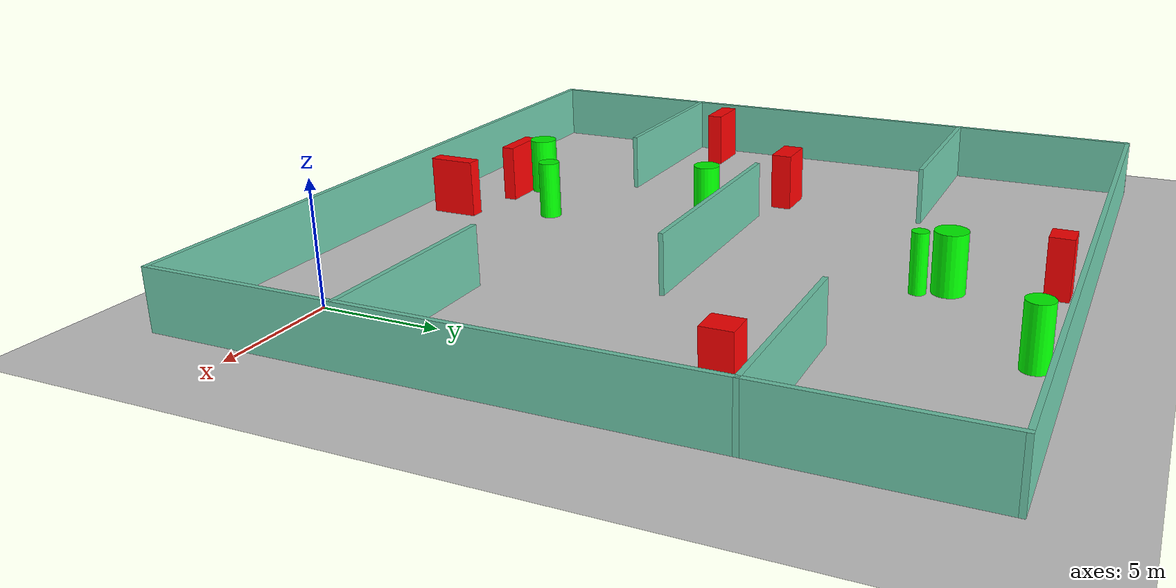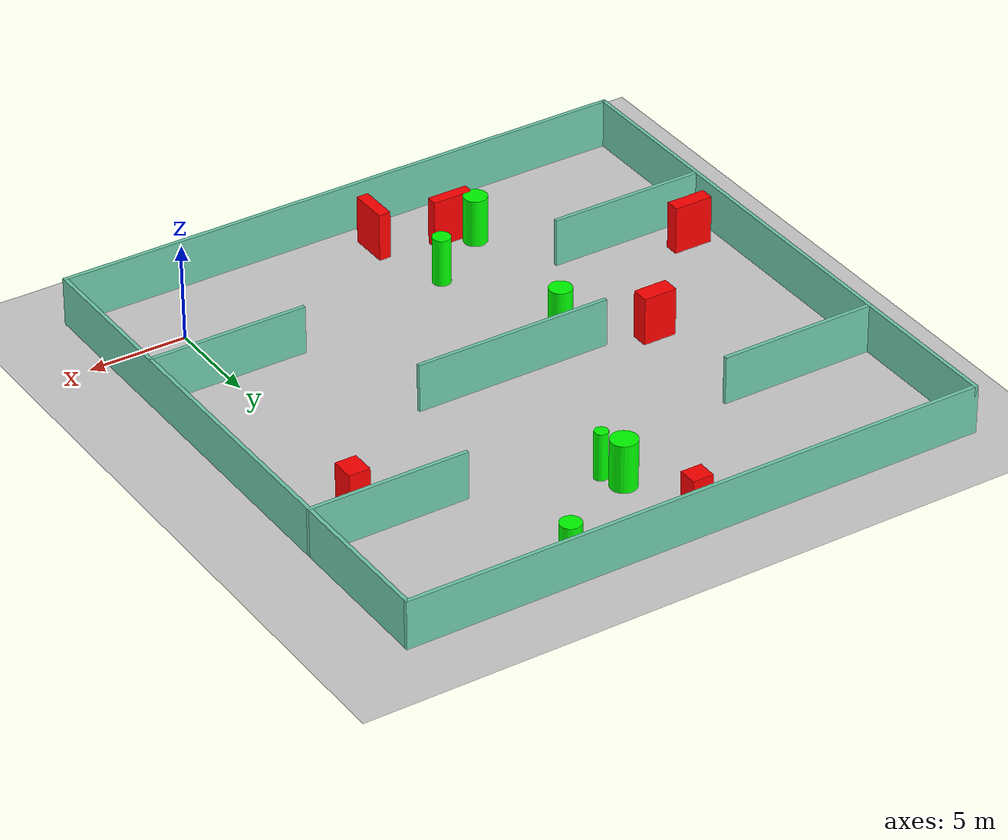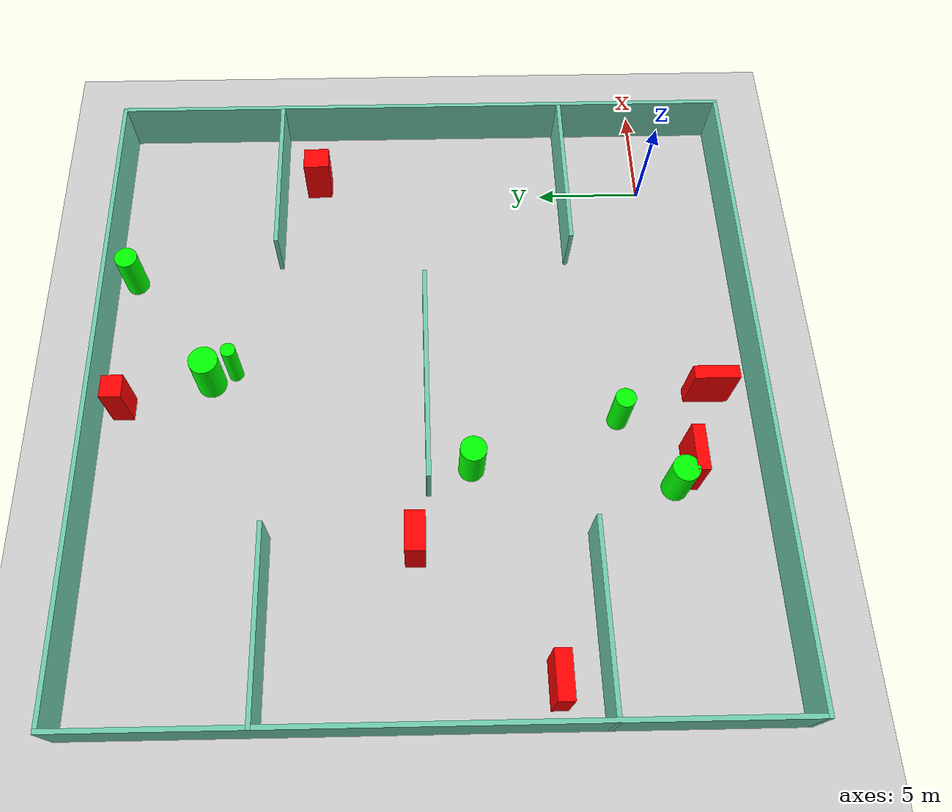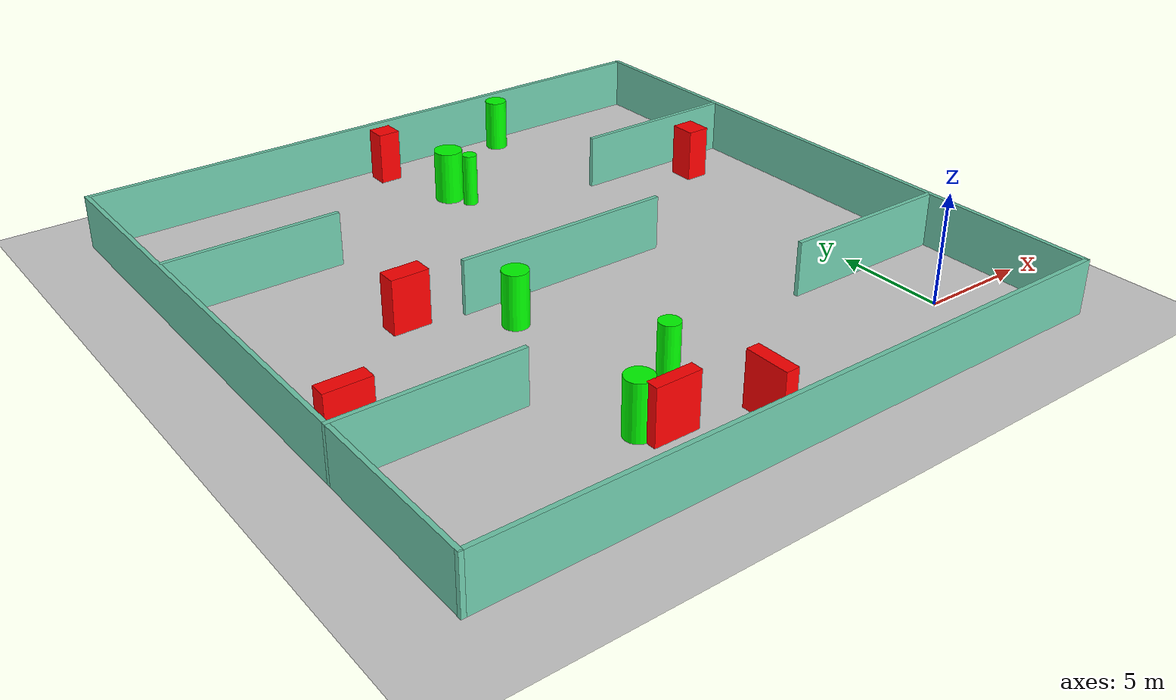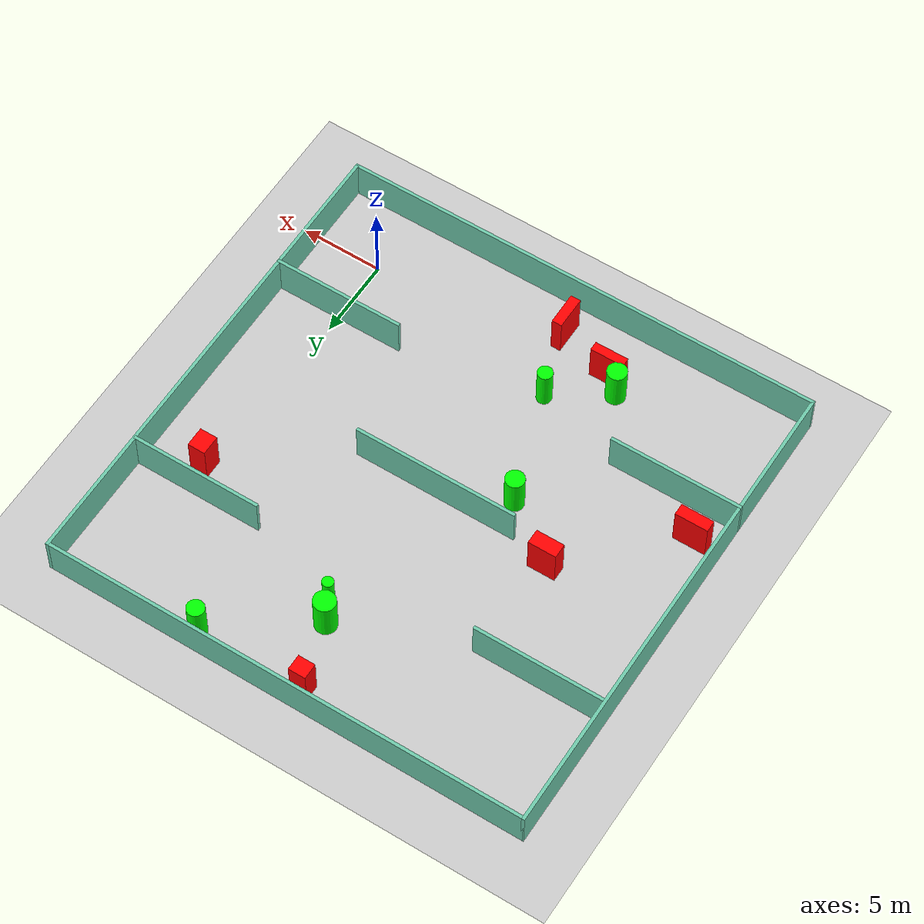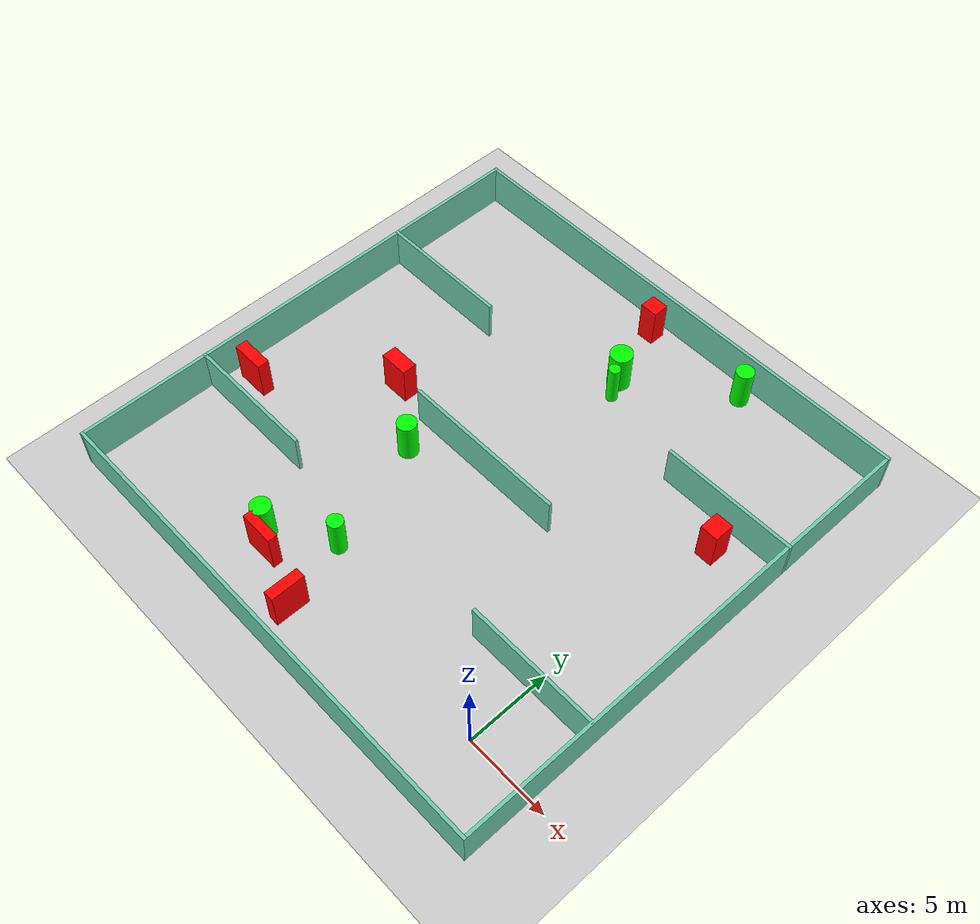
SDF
<sdf version="1.7">
 <world name="default">
  <light name="sun" type="directional">
   <pose>0 0 10 0 -0 0</pose>
   <diffuse>0.8 0.8 0.8 1</diffuse>
   <specular>0.2 0.2 0.2 1</specular>
   <attenuation>
    <range>1000</range>
    <constant>0.9</constant>
    <linear>0.01</linear>
    <quadratic>0.001</quadratic>
   </attenuation>
   <direction>-0.5 0.1 -0.9</direction>
   <spot><inner_angle>0</inner_angle><outer_angle>0</outer_angle><falloff>0</falloff></spot>
  </light>
  <model name="ground_plane">
   <static>1</static>
   <link name="link">
    <collision name="collision">
     <geometry><plane><normal>0 0 1</normal><size>100 100</size></plane></geometry>
     <surface>
      <contact><collide_bitmask>65535</collide_bitmask></contact>
      <friction><ode><mu>100</mu><mu2>50</mu2></ode></friction>
     </surface>
    </collision>
    <visual name="visual">
     <cast_shadows>0</cast_shadows>
     <geometry><plane><normal>0 0 1</normal><size>100 100</size></plane></geometry>
     <material>
      <script><uri>file://media/materials/scripts/gazebo.material</uri><name>Gazebo/Grey</name></script>
     </material>
    </visual>
   </link>
  </model>
  <gravity>0 0 -9.8</gravity>
  <magnetic_field>6e-06 2.3e-05 -4.2e-05</magnetic_field>
  <atmosphere type="adiabatic"/>
  <physics type="ode">
   <max_step_size>0.001</max_step_size>
   <real_time_factor>1</real_time_factor>
   <real_time_update_rate>1000</real_time_update_rate>
  </physics>
  <scene><ambient>0.4 0.4 0.4 1</ambient><background>0.7 0.7 0.7 1</background><shadows>1</shadows></scene>
  <spherical_coordinates>
   <surface_model>EARTH_WGS84</surface_model>
   <latitude_deg>0</latitude_deg>
   <longitude_deg>0</longitude_deg>
   <elevation>0</elevation>
   <heading_deg>0</heading_deg>
  </spherical_coordinates>
  <model name="my_base_walls">
   <link name="Wall_10">
    <collision name="Wall_10_Collision">
     <geometry><box><size>8.2 0.2 2.5</size></box></geometry>
     <pose>0 0 1.25 0 -0 0</pose>
    </collision>
    <visual name="Wall_10_Visual">
     <pose>0 0 1.25 0 -0 0</pose>
     <geometry><box><size>8.2 0.2 2.5</size></box></geometry>
     <material>
      <script><uri>file://media/materials/scripts/gazebo.material</uri><name>Gazebo/Grey</name></script>
      <ambient>0.435294 0.796078 0.67451 1</ambient>
     </material>
     <meta><layer>0</layer></meta>
    </visual>
    <pose>-11 -7 0 0 -0 0</pose>
   </link>
   <link name="Wall_12">
    <collision name="Wall_12_Collision">
     <geometry><box><size>8.2 0.2 2.5</size></box></geometry>
     <pose>0 0 1.25 0 -0 0</pose>
    </collision>
    <visual name="Wall_12_Visual">
     <pose>0 0 1.25 0 -0 0</pose>
     <geometry><box><size>8.2 0.2 2.5</size></box></geometry>
     <material>
      <script><uri>file://media/materials/scripts/gazebo.material</uri><name>Gazebo/Grey</name></script>
      <ambient>0.435294 0.796078 0.67451 1</ambient>
     </material>
     <meta><layer>0</layer></meta>
    </visual>
    <pose>-11 7 0 0 -0 0</pose>
   </link>
   <link name="Wall_14">
    <collision name="Wall_14_Collision">
     <geometry><box><size>8.2 0.2 2.5</size></box></geometry>
     <pose>0 0 1.25 0 -0 0</pose>
    </collision>
    <visual name="Wall_14_Visual">
     <pose>0 0 1.25 0 -0 0</pose>
     <geometry><box><size>8.2 0.2 2.5</size></box></geometry>
     <material>
      <script><uri>file://media/materials/scripts/gazebo.material</uri><name>Gazebo/Grey</name></script>
      <ambient>0.435294 0.796078 0.67451 1</ambient>
     </material>
     <meta><layer>0</layer></meta>
    </visual>
    <pose>11 7 0 0 -0 3.14159</pose>
   </link>
   <link name="Wall_16">
    <collision name="Wall_16_Collision">
     <geometry><box><size>10.2 0.2 2.5</size></box></geometry>
     <pose>0 0 1.25 0 -0 0</pose>
    </collision>
    <visual name="Wall_16_Visual">
     <pose>0 0 1.25 0 -0 0</pose>
     <geometry><box><size>10.2 0.2 2.5</size></box></geometry>
     <material>
      <script><uri>file://media/materials/scripts/gazebo.material</uri><name>Gazebo/Grey</name></script>
      <ambient>0.435294 0.796078 0.67451 1</ambient>
     </material>
     <meta><layer>0</layer></meta>
    </visual>
    <pose>0 0 0 0 -0 3.14159</pose>
   </link>
   <link name="Wall_2">
    <collision name="Wall_2_Collision">
     <geometry><box><size>30.2 0.2 2.5</size></box></geometry>
     <pose>0 0 1.25 0 -0 0</pose>
    </collision>
    <visual name="Wall_2_Visual">
     <pose>0 0 1.25 0 -0 0</pose>
     <geometry><box><size>30.2 0.2 2.5</size></box></geometry>
     <material>
      <script><uri>file://media/materials/scripts/gazebo.material</uri><name>Gazebo/Grey</name></script>
      <ambient>0.435294 0.796078 0.67451 1</ambient>
     </material>
     <meta><layer>0</layer></meta>
    </visual>
    <pose>0 -15 0 0 -0 3.14159</pose>
   </link>
   <link name="Wall_3">
    <collision name="Wall_3_Collision">
     <geometry><box><size>30.2 0.2 2.5</size></box></geometry>
     <pose>0 0 1.25 0 -0 0</pose>
    </collision>
    <visual name="Wall_3_Visual">
     <pose>0 0 1.25 0 -0 0</pose>
     <geometry><box><size>30.2 0.2 2.5</size></box></geometry>
     <material>
      <script><uri>file://media/materials/scripts/gazebo.material</uri><name>Gazebo/Grey</name></script>
      <ambient>0.435294 0.796078 0.67451 1</ambient>
     </material>
     <meta><layer>0</layer></meta>
    </visual>
    <pose>-15 0 0 0 -0 1.5708</pose>
   </link>
   <link name="Wall_4">
    <collision name="Wall_4_Collision">
     <geometry><box><size>30.2 0.2 2.5</size></box></geometry>
     <pose>0 0 1.25 0 -0 0</pose>
    </collision>
    <visual name="Wall_4_Visual">
     <pose>0 0 1.25 0 -0 0</pose>
     <geometry><box><size>30.2 0.2 2.5</size></box></geometry>
     <material>
      <script><uri>file://media/materials/scripts/gazebo.material</uri><name>Gazebo/Grey</name></script>
      <ambient>0.435294 0.796078 0.67451 1</ambient>
     </material>
     <meta><layer>0</layer></meta>
    </visual>
    <pose>0 15 0 0 -0 0</pose>
   </link>
   <link name="Wall_6">
    <collision name="Wall_6_Collision">
     <geometry><box><size>30.2 0.2 2.5</size></box></geometry>
     <pose>0 0 1.25 0 -0 0</pose>
    </collision>
    <visual name="Wall_6_Visual">
     <pose>0 0 1.25 0 -0 0</pose>
     <geometry><box><size>30.2 0.2 2.5</size></box></geometry>
     <material>
      <script><uri>file://media/materials/scripts/gazebo.material</uri><name>Gazebo/Grey</name></script>
      <ambient>0.435294 0.796078 0.67451 1</ambient>
     </material>
     <meta><layer>0</layer></meta>
    </visual>
    <pose>15 0 0 0 -0 1.5708</pose>
   </link>
   <link name="Wall_8">
    <collision name="Wall_8_Collision">
     <geometry><box><size>8.2 0.2 2.5</size></box></geometry>
     <pose>0 0 1.25 0 -0 0</pose>
    </collision>
    <visual name="Wall_8_Visual">
     <pose>0 0 1.25 0 -0 0</pose>
     <geometry><box><size>8.2 0.2 2.5</size></box></geometry>
     <material>
      <script><uri>file://media/materials/scripts/gazebo.material</uri><name>Gazebo/Grey</name></script>
      <ambient>0.435294 0.796078 0.67451 1</ambient>
     </material>
     <meta><layer>0</layer></meta>
    </visual>
    <pose>11 -7 0 0 -0 3.14159</pose>
   </link>
   <static>1</static>
   <pose>-11 11 0 0 -0 0</pose>
  </model>
  <model name="cylinder1">
   <static>1</static>
   <link name="link">
    <inertial>
     <mass>1</mass>
     <inertia><ixx>0.5</ixx><ixy>0</ixy><ixz>0</ixz><iyy>0.5</iyy><iyz>0</iyz><izz>1</izz></inertia>
    </inertial>
    <collision name="collision">
     <geometry><cylinder><radius>0.4610614182803982</radius><length>2.5</length></cylinder></geometry>
    </collision>
    <visual name="visual">
     <geometry><cylinder><radius>0.4610614182803982</radius><length>2.5</length></cylinder></geometry>
     <material>
      <ambient>0 1 0 1</ambient>
      <diffuse>0 1 0 1</diffuse>
      <specular>0.1 0.1 0.1 1</specular>
      <emissive>0 0 0 0</emissive>
     </material>
    </visual>
   </link>
   <pose>-12.616909777302315 2.3140727472280567 1.25 0 0 0</pose>
  </model>
  <model name="cylinder2">
   <static>1</static>
   <link name="link">
    <inertial>
     <mass>1</mass>
     <inertia><ixx>0.5</ixx><ixy>0</ixy><ixz>0</ixz><iyy>0.5</iyy><iyz>0</iyz><izz>1</izz></inertia>
    </inertial>
    <collision name="collision">
     <geometry><cylinder><radius>0.5997317993139183</radius><length>2.5</length></cylinder></geometry>
    </collision>
    <visual name="visual">
     <geometry><cylinder><radius>0.5997317993139183</radius><length>2.5</length></cylinder></geometry>
     <material>
      <ambient>0 1 0 1</ambient>
      <diffuse>0 1 0 1</diffuse>
      <specular>0.1 0.1 0.1 1</specular>
      <emissive>0 0 0 0</emissive>
     </material>
    </visual>
   </link>
   <pose>-15.921687807563796 0.08937693952233161 1.25 0 0 0</pose>
  </model>
  <model name="cylinder3">
   <static>1</static>
   <link name="link">
    <inertial>
     <mass>1</mass>
     <inertia><ixx>0.5</ixx><ixy>0</ixy><ixz>0</ixz><iyy>0.5</iyy><iyz>0</iyz><izz>1</izz></inertia>
    </inertial>
    <collision name="collision">
     <geometry><cylinder><radius>0.6674610910965402</radius><length>2.5</length></cylinder></geometry>
    </collision>
    <visual name="visual">
     <geometry><cylinder><radius>0.6674610910965402</radius><length>2.5</length></cylinder></geometry>
     <material>
      <ambient>0 1 0 1</ambient>
      <diffuse>0 1 0 1</diffuse>
      <specular>0.1 0.1 0.1 1</specular>
      <emissive>0 0 0 0</emissive>
     </material>
    </visual>
   </link>
   <pose>-10.421221201131333 20.94385720894193 1.25 0 0 0</pose>
  </model>
  <model name="cylinder4">
   <static>1</static>
   <link name="link">
    <inertial>
     <mass>1</mass>
     <inertia><ixx>0.5</ixx><ixy>0</ixy><ixz>0</ixz><iyy>0.5</iyy><iyz>0</iyz><izz>1</izz></inertia>
    </inertial>
    <collision name="collision">
     <geometry><cylinder><radius>0.5819619269339813</radius><length>2.5</length></cylinder></geometry>
    </collision>
    <visual name="visual">
     <geometry><cylinder><radius>0.5819619269339813</radius><length>2.5</length></cylinder></geometry>
     <material>
      <ambient>0 1 0 1</ambient>
      <diffuse>0 1 0 1</diffuse>
      <specular>0.1 0.1 0.1 1</specular>
      <emissive>0 0 0 0</emissive>
     </material>
    </visual>
   </link>
   <pose>-14.873009586673485 9.062012604872992 1.25 0 0 0</pose>
  </model>
  <model name="cylinder5">
   <static>1</static>
   <link name="link">
    <inertial>
     <mass>1</mass>
     <inertia><ixx>0.5</ixx><ixy>0</ixy><ixz>0</ixz><iyy>0.5</iyy><iyz>0</iyz><izz>1</izz></inertia>
    </inertial>
    <collision name="collision">
     <geometry><cylinder><radius>0.529228655180182</radius><length>2.5</length></cylinder></geometry>
    </collision>
    <visual name="visual">
     <geometry><cylinder><radius>0.529228655180182</radius><length>2.5</length></cylinder></geometry>
     <material>
      <ambient>0 1 0 1</ambient>
      <diffuse>0 1 0 1</diffuse>
      <specular>0.1 0.1 0.1 1</specular>
      <emissive>0 0 0 0</emissive>
     </material>
    </visual>
   </link>
   <pose>-4.9242108246689895 24.989828769142754 1.25 0 0 0</pose>
  </model>
  <model name="cylinder6">
   <static>1</static>
   <link name="link">
    <inertial>
     <mass>1</mass>
     <inertia><ixx>0.5</ixx><ixy>0</ixy><ixz>0</ixz><iyy>0.5</iyy><iyz>0</iyz><izz>1</izz></inertia>
    </inertial>
    <collision name="collision">
     <geometry><cylinder><radius>0.3416626301114767</radius><length>2.5</length></cylinder></geometry>
    </collision>
    <visual name="visual">
     <geometry><cylinder><radius>0.3416626301114767</radius><length>2.5</length></cylinder></geometry>
     <material>
      <ambient>0 1 0 1</ambient>
      <diffuse>0 1 0 1</diffuse>
      <specular>0.1 0.1 0.1 1</specular>
      <emissive>0 0 0 0</emissive>
     </material>
    </visual>
   </link>
   <pose>-9.91770784112914 19.87346671626673 1.25 0 0 0</pose>
  </model>
  <model name="box1">
   <static>1</static>
   <link name="link">
    <inertial>
     <mass>1</mass>
     <inertia><ixx>0.083</ixx><ixy>0</ixy><ixz>0</ixz><iyy>0.083</iyy><iyz>0</iyz><izz>0.083</izz></inertia>
    </inertial>
    <collision name="collision">
     <geometry><box><size>1.0610388681146992 0.9699750562504644 2.5</size></box></geometry>
    </collision>
    <visual name="visual">
     <geometry><box><size>1.0610388681146992 0.9699750562504644 2.5</size></box></geometry>
     <material>
      <ambient>1 0 0 1</ambient>
      <diffuse>1 0 0 1</diffuse>
      <specular>0.1 0.1 0.1 1</specular>
      <emissive>0 0 0 0</emissive>
     </material>
    </visual>
    <sensor name="my_contact" type="contact">
     <contact><collision>box_collision</collision><topic>__default_topic__</topic></contact>
    </sensor>
   </link>
   <pose>-11.618602011438929 24.876897096820617 1.25 0 0 0</pose>
  </model>
  <model name="box2">
   <static>1</static>
   <link name="link">
    <inertial>
     <mass>1</mass>
     <inertia><ixx>0.083</ixx><ixy>0</ixy><ixz>0</ixz><iyy>0.083</iyy><iyz>0</iyz><izz>0.083</izz></inertia>
    </inertial>
    <collision name="collision">
     <geometry><box><size>0.6218622737764278 2.035135765882938 2.5</size></box></geometry>
    </collision>
    <visual name="visual">
     <geometry><box><size>0.6218622737764278 2.035135765882938 2.5</size></box></geometry>
     <material>
      <ambient>1 0 0 1</ambient>
      <diffuse>1 0 0 1</diffuse>
      <specular>0.1 0.1 0.1 1</specular>
      <emissive>0 0 0 0</emissive>
     </material>
    </visual>
    <sensor name="my_contact" type="contact">
     <contact><collision>box_collision</collision><topic>__default_topic__</topic></contact>
    </sensor>
   </link>
   <pose>-11.421949334062461 -1.8549528986230968 1.25 0 0 0</pose>
  </model>
  <model name="box3">
   <static>1</static>
   <link name="link">
    <inertial>
     <mass>1</mass>
     <inertia><ixx>0.083</ixx><ixy>0</ixy><ixz>0</ixz><iyy>0.083</iyy><iyz>0</iyz><izz>0.083</izz></inertia>
    </inertial>
    <collision name="collision">
     <geometry><box><size>2.025240066283583 0.7153628716188376 2.5</size></box></geometry>
    </collision>
    <visual name="visual">
     <geometry><box><size>2.025240066283583 0.7153628716188376 2.5</size></box></geometry>
     <material>
      <ambient>1 0 0 1</ambient>
      <diffuse>1 0 0 1</diffuse>
      <specular>0.1 0.1 0.1 1</specular>
      <emissive>0 0 0 0</emissive>
     </material>
    </visual>
    <sensor name="my_contact" type="contact">
     <contact><collision>box_collision</collision><topic>__default_topic__</topic></contact>
    </sensor>
   </link>
   <pose>-24.287007378004386 5.923507607149126 1.25 0 0 0</pose>
  </model>
  <model name="box4">
   <static>1</static>
   <link name="link">
    <inertial>
     <mass>1</mass>
     <inertia><ixx>0.083</ixx><ixy>0</ixy><ixz>0</ixz><iyy>0.083</iyy><iyz>0</iyz><izz>0.083</izz></inertia>
    </inertial>
    <collision name="collision">
     <geometry><box><size>1.7374344572370384 0.8961778012306292 2.5</size></box></geometry>
    </collision>
    <visual name="visual">
     <geometry><box><size>1.7374344572370384 0.8961778012306292 2.5</size></box></geometry>
     <material>
      <ambient>1 0 0 1</ambient>
      <diffuse>1 0 0 1</diffuse>
      <specular>0.1 0.1 0.1 1</specular>
      <emissive>0 0 0 0</emissive>
     </material>
    </visual>
    <sensor name="my_contact" type="contact">
     <contact><collision>box_collision</collision><topic>__default_topic__</topic></contact>
    </sensor>
   </link>
   <pose>-18.431007818254532 11.61235456334926 1.25 0 0 0</pose>
  </model>
  <model name="box5">
   <static>1</static>
   <link name="link">
    <inertial>
     <mass>1</mass>
     <inertia><ixx>0.083</ixx><ixy>0</ixy><ixz>0</ixz><iyy>0.083</iyy><iyz>0</iyz><izz>0.083</izz></inertia>
    </inertial>
    <collision name="collision">
     <geometry><box><size>2.092489332215023 0.5622084551844755 2.5</size></box></geometry>
    </collision>
    <visual name="visual">
     <geometry><box><size>2.092489332215023 0.5622084551844755 2.5</size></box></geometry>
     <material>
      <ambient>1 0 0 1</ambient>
      <diffuse>1 0 0 1</diffuse>
      <specular>0.1 0.1 0.1 1</specular>
      <emissive>0 0 0 0</emissive>
     </material>
    </visual>
    <sensor name="my_contact" type="contact">
     <contact><collision>box_collision</collision><topic>__default_topic__</topic></contact>
    </sensor>
   </link>
   <pose>-14.963106814501776 -0.6555754667084237 1.25 0 0 0</pose>
  </model>
  <model name="box6">
   <static>1</static>
   <link name="link">
    <inertial>
     <mass>1</mass>
     <inertia><ixx>0.083</ixx><ixy>0</ixy><ixz>0</ixz><iyy>0.083</iyy><iyz>0</iyz><izz>0.083</izz></inertia>
    </inertial>
    <collision name="collision">
     <geometry><box><size>1.0904273521865124 1.2095326951433836 2.5</size></box></geometry>
    </collision>
    <visual name="visual">
     <geometry><box><size>1.0904273521865124 1.2095326951433836 2.5</size></box></geometry>
     <material>
      <ambient>1 0 0 1</ambient>
      <diffuse>1 0 0 1</diffuse>
      <specular>0.1 0.1 0.1 1</specular>
      <emissive>0 0 0 0</emissive>
     </material>
    </visual>
    <sensor name="my_contact" type="contact">
     <contact><collision>box_collision</collision><topic>__default_topic__</topic></contact>
    </sensor>
   </link>
   <pose>0.7390103113447601 16.22622874096949 1.25 0 0 0</pose>
  </model>
 </world>
</sdf>
